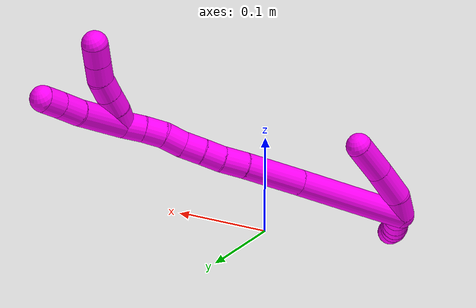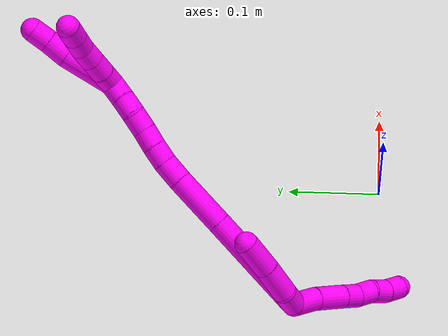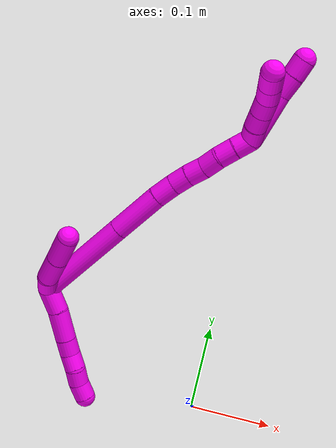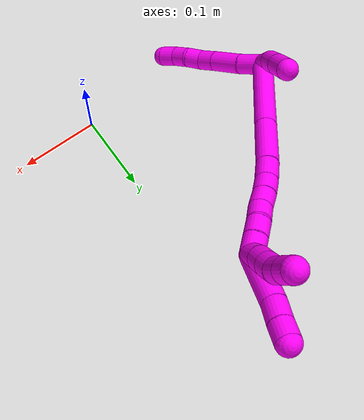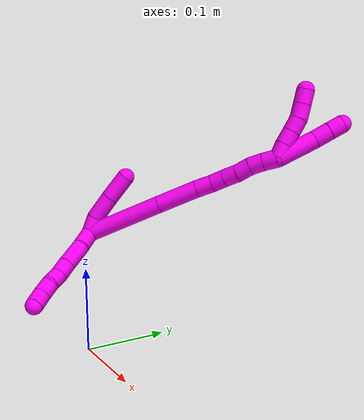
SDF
<sdf version="1.7">
 <world name="default">
  <model name="10">
   <static>0</static>
   <link name="10">
    <collision name="collision-cylinder-e_1_2_8">
     <pose>0.007211 -0.009165 -0.009652 2.38206 0.496488 1.13158</pose>
     <geometry><cylinder><radius>0.0125</radius><length>0.030275</length></cylinder></geometry>
     <surface>
      <friction><ode><mu>1.16</mu><mu2>1.16</mu2><slip1>0</slip1><slip2>0</slip2></ode></friction>
      <contact><ode><kp>1e+06</kp><kd>1</kd><max_vel>0</max_vel><min_depth>0.001</min_depth></ode></contact>
     </surface>
    </collision>
    <visual name="visual-cylinder-e_1_2_8">
     <pose>0.007211 -0.009165 -0.009652 2.38206 0.496488 1.13158</pose>
     <geometry><cylinder><radius>0.0125</radius><length>0.030275</length></cylinder></geometry>
     <material><ambient>1 0 0.964706 1</ambient></material>
    </visual>
    <collision name="collision-cylinder-e_2_8_9">
     <pose>0.021124 -0.029577 -0.032681 2.44247 0.36623 0.940083</pose>
     <geometry><cylinder><radius>0.0125</radius><length>0.037438</length></cylinder></geometry>
     <surface>
      <friction><ode><mu>1.16</mu><mu2>1.16</mu2><slip1>0</slip1><slip2>0</slip2></ode></friction>
      <contact><ode><kp>1e+06</kp><kd>1</kd><max_vel>0</max_vel><min_depth>0.001</min_depth></ode></contact>
     </surface>
    </collision>
    <visual name="visual-cylinder-e_2_8_9">
     <pose>0.021124 -0.029577 -0.032681 2.44247 0.36623 0.940083</pose>
     <geometry><cylinder><radius>0.0125</radius><length>0.037438</length></cylinder></geometry>
     <material><ambient>1 0 0.964706 1</ambient></material>
    </visual>
    <collision name="collision-cylinder-e_3_9_10">
     <pose>0.031671 -0.046843 -0.053797 2.48068 0.373628 1.00724</pose>
     <geometry><cylinder><radius>0.0125</radius><length>0.021059</length></cylinder></geometry>
     <surface>
      <friction><ode><mu>1.16</mu><mu2>1.16</mu2><slip1>0</slip1><slip2>0</slip2></ode></friction>
      <contact><ode><kp>1e+06</kp><kd>1</kd><max_vel>0</max_vel><min_depth>0.001</min_depth></ode></contact>
     </surface>
    </collision>
    <visual name="visual-cylinder-e_3_9_10">
     <pose>0.031671 -0.046843 -0.053797 2.48068 0.373628 1.00724</pose>
     <geometry><cylinder><radius>0.0125</radius><length>0.021059</length></cylinder></geometry>
     <material><ambient>1 0 0.964706 1</ambient></material>
    </visual>
    <collision name="collision-cylinder-e_4_10_11">
     <pose>0.03965 -0.060249 -0.067164 2.22166 0.418943 0.810715</pose>
     <geometry><cylinder><radius>0.0125</radius><length>0.020335</length></cylinder></geometry>
     <surface>
      <friction><ode><mu>1.16</mu><mu2>1.16</mu2><slip1>0</slip1><slip2>0</slip2></ode></friction>
      <contact><ode><kp>1e+06</kp><kd>1</kd><max_vel>0</max_vel><min_depth>0.001</min_depth></ode></contact>
     </surface>
    </collision>
    <visual name="visual-cylinder-e_4_10_11">
     <pose>0.03965 -0.060249 -0.067164 2.22166 0.418943 0.810715</pose>
     <geometry><cylinder><radius>0.0125</radius><length>0.020335</length></cylinder></geometry>
     <material><ambient>1 0 0.964706 1</ambient></material>
    </visual>
    <collision name="collision-cylinder-e_5_11_12">
     <pose>0.047103 -0.073258 -0.080502 2.5118 0.334541 0.95646</pose>
     <geometry><cylinder><radius>0.0125</radius><length>0.020203</length></cylinder></geometry>
     <surface>
      <friction><ode><mu>1.16</mu><mu2>1.16</mu2><slip1>0</slip1><slip2>0</slip2></ode></friction>
      <contact><ode><kp>1e+06</kp><kd>1</kd><max_vel>0</max_vel><min_depth>0.001</min_depth></ode></contact>
     </surface>
    </collision>
    <visual name="visual-cylinder-e_5_11_12">
     <pose>0.047103 -0.073258 -0.080502 2.5118 0.334541 0.95646</pose>
     <geometry><cylinder><radius>0.0125</radius><length>0.020203</length></cylinder></geometry>
     <material><ambient>1 0 0.964706 1</ambient></material>
    </visual>
    <collision name="collision-cylinder-e_6_12_6">
     <pose>0.055501 -0.085093 -0.094738 2.38051 0.513423 1.16143</pose>
     <geometry><cylinder><radius>0.0125</radius><length>0.020691</length></cylinder></geometry>
     <surface>
      <friction><ode><mu>1.16</mu><mu2>1.16</mu2><slip1>0</slip1><slip2>0</slip2></ode></friction>
      <contact><ode><kp>1e+06</kp><kd>1</kd><max_vel>0</max_vel><min_depth>0.001</min_depth></ode></contact>
     </surface>
    </collision>
    <visual name="visual-cylinder-e_6_12_6">
     <pose>0.055501 -0.085093 -0.094738 2.38051 0.513423 1.16143</pose>
     <geometry><cylinder><radius>0.0125</radius><length>0.020691</length></cylinder></geometry>
     <material><ambient>1 0 0.964706 1</ambient></material>
    </visual>
    <collision name="collision-cylinder-e_1_2_13">
     <pose>-0.001358 0.000225 0.012329 -0.018208 -0.109669 0.000999</pose>
     <geometry><cylinder><radius>0.0125</radius><length>0.024812</length></cylinder></geometry>
     <surface>
      <friction><ode><mu>1.16</mu><mu2>1.16</mu2><slip1>0</slip1><slip2>0</slip2></ode></friction>
      <contact><ode><kp>1e+06</kp><kd>1</kd><max_vel>0</max_vel><min_depth>0.001</min_depth></ode></contact>
     </surface>
    </collision>
    <visual name="visual-cylinder-e_1_2_13">
     <pose>-0.001358 0.000225 0.012329 -0.018208 -0.109669 0.000999</pose>
     <geometry><cylinder><radius>0.0125</radius><length>0.024812</length></cylinder></geometry>
     <material><ambient>1 0 0.964706 1</ambient></material>
    </visual>
    <collision name="collision-cylinder-e_2_13_14">
     <pose>0.000918 0.002431 0.042749 -0.109129 0.197059 -0.010798</pose>
     <geometry><cylinder><radius>0.0125</radius><length>0.037116</length></cylinder></geometry>
     <surface>
      <friction><ode><mu>1.16</mu><mu2>1.16</mu2><slip1>0</slip1><slip2>0</slip2></ode></friction>
      <contact><ode><kp>1e+06</kp><kd>1</kd><max_vel>0</max_vel><min_depth>0.001</min_depth></ode></contact>
     </surface>
    </collision>
    <visual name="visual-cylinder-e_2_13_14">
     <pose>0.000918 0.002431 0.042749 -0.109129 0.197059 -0.010798</pose>
     <geometry><cylinder><radius>0.0125</radius><length>0.037116</length></cylinder></geometry>
     <material><ambient>1 0 0.964706 1</ambient></material>
    </visual>
    <collision name="collision-cylinder-e_3_14_5">
     <pose>0.008327 0.007271 0.079278 -0.153754 0.199689 -0.015433</pose>
     <geometry><cylinder><radius>0.0125</radius><length>0.038072</length></cylinder></geometry>
     <surface>
      <friction><ode><mu>1.16</mu><mu2>1.16</mu2><slip1>0</slip1><slip2>0</slip2></ode></friction>
      <contact><ode><kp>1e+06</kp><kd>1</kd><max_vel>0</max_vel><min_depth>0.001</min_depth></ode></contact>
     </surface>
    </collision>
    <visual name="visual-cylinder-e_3_14_5">
     <pose>0.008327 0.007271 0.079278 -0.153754 0.199689 -0.015433</pose>
     <geometry><cylinder><radius>0.0125</radius><length>0.038072</length></cylinder></geometry>
     <material><ambient>1 0 0.964706 1</ambient></material>
    </visual>
    <collision name="collision-cylinder-e_1_2_15">
     <pose>0.035013 0.019371 0.041357 -0.438031 0.654082 -0.150726</pose>
     <geometry><cylinder><radius>0.0125</radius><length>0.115091</length></cylinder></geometry>
     <surface>
      <friction><ode><mu>1.16</mu><mu2>1.16</mu2><slip1>0</slip1><slip2>0</slip2></ode></friction>
      <contact><ode><kp>1e+06</kp><kd>1</kd><max_vel>0</max_vel><min_depth>0.001</min_depth></ode></contact>
     </surface>
    </collision>
    <visual name="visual-cylinder-e_1_2_15">
     <pose>0.035013 0.019371 0.041357 -0.438031 0.654082 -0.150726</pose>
     <geometry><cylinder><radius>0.0125</radius><length>0.115091</length></cylinder></geometry>
     <material><ambient>1 0 0.964706 1</ambient></material>
    </visual>
    <collision name="collision-cylinder-e_2_15_16">
     <pose>0.088328 0.049 0.104144 -0.446453 0.656395 -0.154292</pose>
     <geometry><cylinder><radius>0.0125</radius><length>0.059982</length></cylinder></geometry>
     <surface>
      <friction><ode><mu>1.16</mu><mu2>1.16</mu2><slip1>0</slip1><slip2>0</slip2></ode></friction>
      <contact><ode><kp>1e+06</kp><kd>1</kd><max_vel>0</max_vel><min_depth>0.001</min_depth></ode></contact>
     </surface>
    </collision>
    <visual name="visual-cylinder-e_2_15_16">
     <pose>0.088328 0.049 0.104144 -0.446453 0.656395 -0.154292</pose>
     <geometry><cylinder><radius>0.0125</radius><length>0.059982</length></cylinder></geometry>
     <material><ambient>1 0 0.964706 1</ambient></material>
    </visual>
    <collision name="collision-cylinder-e_3_16_17">
     <pose>0.114726 0.063055 0.13363 -0.440476 0.737784 -0.172661</pose>
     <geometry><cylinder><radius>0.0125</radius><length>0.024071</length></cylinder></geometry>
     <surface>
      <friction><ode><mu>1.16</mu><mu2>1.16</mu2><slip1>0</slip1><slip2>0</slip2></ode></friction>
      <contact><ode><kp>1e+06</kp><kd>1</kd><max_vel>0</max_vel><min_depth>0.001</min_depth></ode></contact>
     </surface>
    </collision>
    <visual name="visual-cylinder-e_3_16_17">
     <pose>0.114726 0.063055 0.13363 -0.440476 0.737784 -0.172661</pose>
     <geometry><cylinder><radius>0.0125</radius><length>0.024071</length></cylinder></geometry>
     <material><ambient>1 0 0.964706 1</ambient></material>
    </visual>
    <collision name="collision-cylinder-e_4_17_18">
     <pose>0.129671 0.068933 0.148759 -0.286089 0.748624 -0.113037</pose>
     <geometry><cylinder><radius>0.0125</radius><length>0.020127</length></cylinder></geometry>
     <surface>
      <friction><ode><mu>1.16</mu><mu2>1.16</mu2><slip1>0</slip1><slip2>0</slip2></ode></friction>
      <contact><ode><kp>1e+06</kp><kd>1</kd><max_vel>0</max_vel><min_depth>0.001</min_depth></ode></contact>
     </surface>
    </collision>
    <visual name="visual-cylinder-e_4_17_18">
     <pose>0.129671 0.068933 0.148759 -0.286089 0.748624 -0.113037</pose>
     <geometry><cylinder><radius>0.0125</radius><length>0.020127</length></cylinder></geometry>
     <material><ambient>1 0 0.964706 1</ambient></material>
    </visual>
    <collision name="collision-cylinder-e_5_18_19">
     <pose>0.143893 0.072673 0.162437 -0.246124 0.824964 -0.108142</pose>
     <geometry><cylinder><radius>0.0125</radius><length>0.020073</length></cylinder></geometry>
     <surface>
      <friction><ode><mu>1.16</mu><mu2>1.16</mu2><slip1>0</slip1><slip2>0</slip2></ode></friction>
      <contact><ode><kp>1e+06</kp><kd>1</kd><max_vel>0</max_vel><min_depth>0.001</min_depth></ode></contact>
     </surface>
    </collision>
    <visual name="visual-cylinder-e_5_18_19">
     <pose>0.143893 0.072673 0.162437 -0.246124 0.824964 -0.108142</pose>
     <geometry><cylinder><radius>0.0125</radius><length>0.020073</length></cylinder></geometry>
     <material><ambient>1 0 0.964706 1</ambient></material>
    </visual>
    <collision name="collision-cylinder-e_6_19_20">
     <pose>0.157561 0.076129 0.176997 -0.222145 0.657484 -0.076054</pose>
     <geometry><cylinder><radius>0.0125</radius><length>0.020604</length></cylinder></geometry>
     <surface>
      <friction><ode><mu>1.16</mu><mu2>1.16</mu2><slip1>0</slip1><slip2>0</slip2></ode></friction>
      <contact><ode><kp>1e+06</kp><kd>1</kd><max_vel>0</max_vel><min_depth>0.001</min_depth></ode></contact>
     </surface>
    </collision>
    <visual name="visual-cylinder-e_6_19_20">
     <pose>0.157561 0.076129 0.176997 -0.222145 0.657484 -0.076054</pose>
     <geometry><cylinder><radius>0.0125</radius><length>0.020604</length></cylinder></geometry>
     <material><ambient>1 0 0.964706 1</ambient></material>
    </visual>
    <collision name="collision-cylinder-e_7_20_21">
     <pose>0.171225 0.080282 0.191321 -0.35425 0.826025 -0.156562</pose>
     <geometry><cylinder><radius>0.0125</radius><length>0.020043</length></cylinder></geometry>
     <surface>
      <friction><ode><mu>1.16</mu><mu2>1.16</mu2><slip1>0</slip1><slip2>0</slip2></ode></friction>
      <contact><ode><kp>1e+06</kp><kd>1</kd><max_vel>0</max_vel><min_depth>0.001</min_depth></ode></contact>
     </surface>
    </collision>
    <visual name="visual-cylinder-e_7_20_21">
     <pose>0.171225 0.080282 0.191321 -0.35425 0.826025 -0.156562</pose>
     <geometry><cylinder><radius>0.0125</radius><length>0.020043</length></cylinder></geometry>
     <material><ambient>1 0 0.964706 1</ambient></material>
    </visual>
    <collision name="collision-cylinder-e_8_21_1">
     <pose>0.186241 0.085387 0.203526 -0.440354 0.870245 -0.20732</pose>
     <geometry><cylinder><radius>0.0125</radius><length>0.020009</length></cylinder></geometry>
     <surface>
      <friction><ode><mu>1.16</mu><mu2>1.16</mu2><slip1>0</slip1><slip2>0</slip2></ode></friction>
      <contact><ode><kp>1e+06</kp><kd>1</kd><max_vel>0</max_vel><min_depth>0.001</min_depth></ode></contact>
     </surface>
    </collision>
    <visual name="visual-cylinder-e_8_21_1">
     <pose>0.186241 0.085387 0.203526 -0.440354 0.870245 -0.20732</pose>
     <geometry><cylinder><radius>0.0125</radius><length>0.020009</length></cylinder></geometry>
     <material><ambient>1 0 0.964706 1</ambient></material>
    </visual>
    <collision name="collision-cylinder-e_1_1_22">
     <pose>0.20391 0.103436 0.230872 -0.618219 0.362796 -0.117011</pose>
     <geometry><cylinder><radius>0.0125</radius><length>0.056471</length></cylinder></geometry>
     <surface>
      <friction><ode><mu>1.16</mu><mu2>1.16</mu2><slip1>0</slip1><slip2>0</slip2></ode></friction>
      <contact><ode><kp>1e+06</kp><kd>1</kd><max_vel>0</max_vel><min_depth>0.001</min_depth></ode></contact>
     </surface>
    </collision>
    <visual name="visual-cylinder-e_1_1_22">
     <pose>0.20391 0.103436 0.230872 -0.618219 0.362796 -0.117011</pose>
     <geometry><cylinder><radius>0.0125</radius><length>0.056471</length></cylinder></geometry>
     <material><ambient>1 0 0.964706 1</ambient></material>
    </visual>
    <collision name="collision-cylinder-e_2_22_23">
     <pose>0.218864 0.123697 0.26181 -0.4845 0.433761 -0.108789</pose>
     <geometry><cylinder><radius>0.0125</radius><length>0.02348</length></cylinder></geometry>
     <surface>
      <friction><ode><mu>1.16</mu><mu2>1.16</mu2><slip1>0</slip1><slip2>0</slip2></ode></friction>
      <contact><ode><kp>1e+06</kp><kd>1</kd><max_vel>0</max_vel><min_depth>0.001</min_depth></ode></contact>
     </surface>
    </collision>
    <visual name="visual-cylinder-e_2_22_23">
     <pose>0.218864 0.123697 0.26181 -0.4845 0.433761 -0.108789</pose>
     <geometry><cylinder><radius>0.0125</radius><length>0.02348</length></cylinder></geometry>
     <material><ambient>1 0 0.964706 1</ambient></material>
    </visual>
    <collision name="collision-cylinder-e_3_23_4">
     <pose>0.227612 0.133396 0.279206 -0.536293 0.390302 -0.108517</pose>
     <geometry><cylinder><radius>0.0125</radius><length>0.020049</length></cylinder></geometry>
     <surface>
      <friction><ode><mu>1.16</mu><mu2>1.16</mu2><slip1>0</slip1><slip2>0</slip2></ode></friction>
      <contact><ode><kp>1e+06</kp><kd>1</kd><max_vel>0</max_vel><min_depth>0.001</min_depth></ode></contact>
     </surface>
    </collision>
    <visual name="visual-cylinder-e_3_23_4">
     <pose>0.227612 0.133396 0.279206 -0.536293 0.390302 -0.108517</pose>
     <geometry><cylinder><radius>0.0125</radius><length>0.020049</length></cylinder></geometry>
     <material><ambient>1 0 0.964706 1</ambient></material>
    </visual>
    <collision name="collision-cylinder-e_1_1_24">
     <pose>0.193214 0.088825 0.219313 -0.069086 -0.067593 0.002337</pose>
     <geometry><cylinder><radius>0.0125</radius><length>0.02</length></cylinder></geometry>
     <surface>
      <friction><ode><mu>1.16</mu><mu2>1.16</mu2><slip1>0</slip1><slip2>0</slip2></ode></friction>
      <contact><ode><kp>1e+06</kp><kd>1</kd><max_vel>0</max_vel><min_depth>0.001</min_depth></ode></contact>
     </surface>
    </collision>
    <visual name="visual-cylinder-e_1_1_24">
     <pose>0.193214 0.088825 0.219313 -0.069086 -0.067593 0.002337</pose>
     <geometry><cylinder><radius>0.0125</radius><length>0.02</length></cylinder></geometry>
     <material><ambient>1 0 0.964706 1</ambient></material>
    </visual>
    <collision name="collision-cylinder-e_2_24_25">
     <pose>0.192951 0.090653 0.239193 -0.114264 0.041242 -0.002359</pose>
     <geometry><cylinder><radius>0.0125</radius><length>0.02</length></cylinder></geometry>
     <surface>
      <friction><ode><mu>1.16</mu><mu2>1.16</mu2><slip1>0</slip1><slip2>0</slip2></ode></friction>
      <contact><ode><kp>1e+06</kp><kd>1</kd><max_vel>0</max_vel><min_depth>0.001</min_depth></ode></contact>
     </surface>
    </collision>
    <visual name="visual-cylinder-e_2_24_25">
     <pose>0.192951 0.090653 0.239193 -0.114264 0.041242 -0.002359</pose>
     <geometry><cylinder><radius>0.0125</radius><length>0.02</length></cylinder></geometry>
     <material><ambient>1 0 0.964706 1</ambient></material>
    </visual>
    <collision name="collision-cylinder-e_3_25_26">
     <pose>0.193581 0.092825 0.259064 -0.10347 0.021769 -0.001127</pose>
     <geometry><cylinder><radius>0.0125</radius><length>0.02</length></cylinder></geometry>
     <surface>
      <friction><ode><mu>1.16</mu><mu2>1.16</mu2><slip1>0</slip1><slip2>0</slip2></ode></friction>
      <contact><ode><kp>1e+06</kp><kd>1</kd><max_vel>0</max_vel><min_depth>0.001</min_depth></ode></contact>
     </surface>
    </collision>
    <visual name="visual-cylinder-e_3_25_26">
     <pose>0.193581 0.092825 0.259064 -0.10347 0.021769 -0.001127</pose>
     <geometry><cylinder><radius>0.0125</radius><length>0.02</length></cylinder></geometry>
     <material><ambient>1 0 0.964706 1</ambient></material>
    </visual>
    <collision name="collision-cylinder-e_4_26_27">
     <pose>0.192005 0.093217 0.278825 0.065126 -0.180249 -0.005887</pose>
     <geometry><cylinder><radius>0.0125</radius><length>0.02</length></cylinder></geometry>
     <surface>
      <friction><ode><mu>1.16</mu><mu2>1.16</mu2><slip1>0</slip1><slip2>0</slip2></ode></friction>
      <contact><ode><kp>1e+06</kp><kd>1</kd><max_vel>0</max_vel><min_depth>0.001</min_depth></ode></contact>
     </surface>
    </collision>
    <visual name="visual-cylinder-e_4_26_27">
     <pose>0.192005 0.093217 0.278825 0.065126 -0.180249 -0.005887</pose>
     <geometry><cylinder><radius>0.0125</radius><length>0.02</length></cylinder></geometry>
     <material><ambient>1 0 0.964706 1</ambient></material>
    </visual>
    <collision name="collision-cylinder-e_5_27_3">
     <pose>0.188359 0.091952 0.298449 0.063657 -0.186485 -0.005955</pose>
     <geometry><cylinder><radius>0.0125</radius><length>0.02</length></cylinder></geometry>
     <surface>
      <friction><ode><mu>1.16</mu><mu2>1.16</mu2><slip1>0</slip1><slip2>0</slip2></ode></friction>
      <contact><ode><kp>1e+06</kp><kd>1</kd><max_vel>0</max_vel><min_depth>0.001</min_depth></ode></contact>
     </surface>
    </collision>
    <visual name="visual-cylinder-e_5_27_3">
     <pose>0.188359 0.091952 0.298449 0.063657 -0.186485 -0.005955</pose>
     <geometry><cylinder><radius>0.0125</radius><length>0.02</length></cylinder></geometry>
     <material><ambient>1 0 0.964706 1</ambient></material>
    </visual>
    <collision name="collision-sphere-3">
     <pose>0.186505 0.091326 0.308255 0 -0 0</pose>
     <geometry><sphere><radius>0.0125</radius></sphere></geometry>
     <surface>
      <friction><ode><mu>1.16</mu><mu2>1.16</mu2><slip1>0</slip1><slip2>0</slip2></ode></friction>
      <contact><ode><kp>1e+06</kp><kd>1</kd><max_vel>0</max_vel><min_depth>0.001</min_depth></ode></contact>
     </surface>
    </collision>
    <visual name="visual-sphere-3">
     <pose>0.186505 0.091326 0.308255 0 -0 0</pose>
     <geometry><sphere><radius>0.0125</radius></sphere></geometry>
     <material><ambient>1 0 0.964706 1</ambient></material>
    </visual>
    <collision name="collision-sphere-27">
     <pose>0.190213 0.092577 0.288642 0 -0 0</pose>
     <geometry><sphere><radius>0.0125</radius></sphere></geometry>
     <surface>
      <friction><ode><mu>1.16</mu><mu2>1.16</mu2><slip1>0</slip1><slip2>0</slip2></ode></friction>
      <contact><ode><kp>1e+06</kp><kd>1</kd><max_vel>0</max_vel><min_depth>0.001</min_depth></ode></contact>
     </surface>
    </collision>
    <visual name="visual-sphere-27">
     <pose>0.190213 0.092577 0.288642 0 -0 0</pose>
     <geometry><sphere><radius>0.0125</radius></sphere></geometry>
     <material><ambient>1 0 0.964706 1</ambient></material>
    </visual>
    <collision name="collision-sphere-26">
     <pose>0.193798 0.093857 0.269008 0 -0 0</pose>
     <geometry><sphere><radius>0.0125</radius></sphere></geometry>
     <surface>
      <friction><ode><mu>1.16</mu><mu2>1.16</mu2><slip1>0</slip1><slip2>0</slip2></ode></friction>
      <contact><ode><kp>1e+06</kp><kd>1</kd><max_vel>0</max_vel><min_depth>0.001</min_depth></ode></contact>
     </surface>
    </collision>
    <visual name="visual-sphere-26">
     <pose>0.193798 0.093857 0.269008 0 -0 0</pose>
     <geometry><sphere><radius>0.0125</radius></sphere></geometry>
     <material><ambient>1 0 0.964706 1</ambient></material>
    </visual>
    <collision name="collision-sphere-25">
     <pose>0.193363 0.091792 0.249119 0 -0 0</pose>
     <geometry><sphere><radius>0.0125</radius></sphere></geometry>
     <surface>
      <friction><ode><mu>1.16</mu><mu2>1.16</mu2><slip1>0</slip1><slip2>0</slip2></ode></friction>
      <contact><ode><kp>1e+06</kp><kd>1</kd><max_vel>0</max_vel><min_depth>0.001</min_depth></ode></contact>
     </surface>
    </collision>
    <visual name="visual-sphere-25">
     <pose>0.193363 0.091792 0.249119 0 -0 0</pose>
     <geometry><sphere><radius>0.0125</radius></sphere></geometry>
     <material><ambient>1 0 0.964706 1</ambient></material>
    </visual>
    <collision name="collision-sphere-24">
     <pose>0.192538 0.089514 0.229267 0 -0 0</pose>
     <geometry><sphere><radius>0.0125</radius></sphere></geometry>
     <surface>
      <friction><ode><mu>1.16</mu><mu2>1.16</mu2><slip1>0</slip1><slip2>0</slip2></ode></friction>
      <contact><ode><kp>1e+06</kp><kd>1</kd><max_vel>0</max_vel><min_depth>0.001</min_depth></ode></contact>
     </surface>
    </collision>
    <visual name="visual-sphere-24">
     <pose>0.192538 0.089514 0.229267 0 -0 0</pose>
     <geometry><sphere><radius>0.0125</radius></sphere></geometry>
     <material><ambient>1 0 0.964706 1</ambient></material>
    </visual>
    <collision name="collision-sphere-4">
     <pose>0.231426 0.138132 0.287175 0 -0 0</pose>
     <geometry><sphere><radius>0.0125</radius></sphere></geometry>
     <surface>
      <friction><ode><mu>1.16</mu><mu2>1.16</mu2><slip1>0</slip1><slip2>0</slip2></ode></friction>
      <contact><ode><kp>1e+06</kp><kd>1</kd><max_vel>0</max_vel><min_depth>0.001</min_depth></ode></contact>
     </surface>
    </collision>
    <visual name="visual-sphere-4">
     <pose>0.231426 0.138132 0.287175 0 -0 0</pose>
     <geometry><sphere><radius>0.0125</radius></sphere></geometry>
     <material><ambient>1 0 0.964706 1</ambient></material>
    </visual>
    <collision name="collision-sphere-23">
     <pose>0.223798 0.128659 0.271237 0 -0 0</pose>
     <geometry><sphere><radius>0.0125</radius></sphere></geometry>
     <surface>
      <friction><ode><mu>1.16</mu><mu2>1.16</mu2><slip1>0</slip1><slip2>0</slip2></ode></friction>
      <contact><ode><kp>1e+06</kp><kd>1</kd><max_vel>0</max_vel><min_depth>0.001</min_depth></ode></contact>
     </surface>
    </collision>
    <visual name="visual-sphere-23">
     <pose>0.223798 0.128659 0.271237 0 -0 0</pose>
     <geometry><sphere><radius>0.0125</radius></sphere></geometry>
     <material><ambient>1 0 0.964706 1</ambient></material>
    </visual>
    <collision name="collision-sphere-22">
     <pose>0.21393 0.118735 0.252384 0 -0 0</pose>
     <geometry><sphere><radius>0.0125</radius></sphere></geometry>
     <surface>
      <friction><ode><mu>1.16</mu><mu2>1.16</mu2><slip1>0</slip1><slip2>0</slip2></ode></friction>
      <contact><ode><kp>1e+06</kp><kd>1</kd><max_vel>0</max_vel><min_depth>0.001</min_depth></ode></contact>
     </surface>
    </collision>
    <visual name="visual-sphere-22">
     <pose>0.21393 0.118735 0.252384 0 -0 0</pose>
     <geometry><sphere><radius>0.0125</radius></sphere></geometry>
     <material><ambient>1 0 0.964706 1</ambient></material>
    </visual>
    <collision name="collision-sphere-1">
     <pose>0.193889 0.088136 0.20936 0 -0 0</pose>
     <geometry><sphere><radius>0.0125</radius></sphere></geometry>
     <surface>
      <friction><ode><mu>1.16</mu><mu2>1.16</mu2><slip1>0</slip1><slip2>0</slip2></ode></friction>
      <contact><ode><kp>1e+06</kp><kd>1</kd><max_vel>0</max_vel><min_depth>0.001</min_depth></ode></contact>
     </surface>
    </collision>
    <visual name="visual-sphere-1">
     <pose>0.193889 0.088136 0.20936 0 -0 0</pose>
     <geometry><sphere><radius>0.0125</radius></sphere></geometry>
     <material><ambient>1 0 0.964706 1</ambient></material>
    </visual>
    <collision name="collision-sphere-21">
     <pose>0.178593 0.082638 0.197692 0 -0 0</pose>
     <geometry><sphere><radius>0.0125</radius></sphere></geometry>
     <surface>
      <friction><ode><mu>1.16</mu><mu2>1.16</mu2><slip1>0</slip1><slip2>0</slip2></ode></friction>
      <contact><ode><kp>1e+06</kp><kd>1</kd><max_vel>0</max_vel><min_depth>0.001</min_depth></ode></contact>
     </surface>
    </collision>
    <visual name="visual-sphere-21">
     <pose>0.178593 0.082638 0.197692 0 -0 0</pose>
     <geometry><sphere><radius>0.0125</radius></sphere></geometry>
     <material><ambient>1 0 0.964706 1</ambient></material>
    </visual>
    <collision name="collision-sphere-12">
     <pose>0.050419 -0.078878 -0.088212 0 -0 0</pose>
     <geometry><sphere><radius>0.0125</radius></sphere></geometry>
     <surface>
      <friction><ode><mu>1.16</mu><mu2>1.16</mu2><slip1>0</slip1><slip2>0</slip2></ode></friction>
      <contact><ode><kp>1e+06</kp><kd>1</kd><max_vel>0</max_vel><min_depth>0.001</min_depth></ode></contact>
     </surface>
    </collision>
    <visual name="visual-sphere-12">
     <pose>0.050419 -0.078878 -0.088212 0 -0 0</pose>
     <geometry><sphere><radius>0.0125</radius></sphere></geometry>
     <material><ambient>1 0 0.964706 1</ambient></material>
    </visual>
    <collision name="collision-sphere-11">
     <pose>0.043786 -0.067639 -0.072791 0 -0 0</pose>
     <geometry><sphere><radius>0.0125</radius></sphere></geometry>
     <surface>
      <friction><ode><mu>1.16</mu><mu2>1.16</mu2><slip1>0</slip1><slip2>0</slip2></ode></friction>
      <contact><ode><kp>1e+06</kp><kd>1</kd><max_vel>0</max_vel><min_depth>0.001</min_depth></ode></contact>
     </surface>
    </collision>
    <visual name="visual-sphere-11">
     <pose>0.043786 -0.067639 -0.072791 0 -0 0</pose>
     <geometry><sphere><radius>0.0125</radius></sphere></geometry>
     <material><ambient>1 0 0.964706 1</ambient></material>
    </visual>
    <collision name="collision-sphere-10">
     <pose>0.035514 -0.05286 -0.061536 0 -0 0</pose>
     <geometry><sphere><radius>0.0125</radius></sphere></geometry>
     <surface>
      <friction><ode><mu>1.16</mu><mu2>1.16</mu2><slip1>0</slip1><slip2>0</slip2></ode></friction>
      <contact><ode><kp>1e+06</kp><kd>1</kd><max_vel>0</max_vel><min_depth>0.001</min_depth></ode></contact>
     </surface>
    </collision>
    <visual name="visual-sphere-10">
     <pose>0.035514 -0.05286 -0.061536 0 -0 0</pose>
     <geometry><sphere><radius>0.0125</radius></sphere></geometry>
     <material><ambient>1 0 0.964706 1</ambient></material>
    </visual>
    <collision name="collision-sphere-9">
     <pose>0.027828 -0.040825 -0.046058 0 -0 0</pose>
     <geometry><sphere><radius>0.0125</radius></sphere></geometry>
     <surface>
      <friction><ode><mu>1.16</mu><mu2>1.16</mu2><slip1>0</slip1><slip2>0</slip2></ode></friction>
      <contact><ode><kp>1e+06</kp><kd>1</kd><max_vel>0</max_vel><min_depth>0.001</min_depth></ode></contact>
     </surface>
    </collision>
    <visual name="visual-sphere-9">
     <pose>0.027828 -0.040825 -0.046058 0 -0 0</pose>
     <geometry><sphere><radius>0.0125</radius></sphere></geometry>
     <material><ambient>1 0 0.964706 1</ambient></material>
    </visual>
    <collision name="collision-sphere-2">
     <geometry><sphere><radius>0.0125</radius></sphere></geometry>
     <surface>
      <friction><ode><mu>1.16</mu><mu2>1.16</mu2><slip1>0</slip1><slip2>0</slip2></ode></friction>
      <contact><ode><kp>1e+06</kp><kd>1</kd><max_vel>0</max_vel><min_depth>0.001</min_depth></ode></contact>
     </surface>
    </collision>
    <visual name="visual-sphere-2">
     <geometry><sphere><radius>0.0125</radius></sphere></geometry>
     <material><ambient>1 0 0.964706 1</ambient></material>
    </visual>
    <collision name="collision-sphere-19">
     <pose>0.151265 0.074332 0.169043 0 -0 0</pose>
     <geometry><sphere><radius>0.0125</radius></sphere></geometry>
     <surface>
      <friction><ode><mu>1.16</mu><mu2>1.16</mu2><slip1>0</slip1><slip2>0</slip2></ode></friction>
      <contact><ode><kp>1e+06</kp><kd>1</kd><max_vel>0</max_vel><min_depth>0.001</min_depth></ode></contact>
     </surface>
    </collision>
    <visual name="visual-sphere-19">
     <pose>0.151265 0.074332 0.169043 0 -0 0</pose>
     <geometry><sphere><radius>0.0125</radius></sphere></geometry>
     <material><ambient>1 0 0.964706 1</ambient></material>
    </visual>
    <collision name="collision-sphere-8">
     <pose>0.014421 -0.01833 -0.019303 0 -0 0</pose>
     <geometry><sphere><radius>0.0125</radius></sphere></geometry>
     <surface>
      <friction><ode><mu>1.16</mu><mu2>1.16</mu2><slip1>0</slip1><slip2>0</slip2></ode></friction>
      <contact><ode><kp>1e+06</kp><kd>1</kd><max_vel>0</max_vel><min_depth>0.001</min_depth></ode></contact>
     </surface>
    </collision>
    <visual name="visual-sphere-8">
     <pose>0.014421 -0.01833 -0.019303 0 -0 0</pose>
     <geometry><sphere><radius>0.0125</radius></sphere></geometry>
     <material><ambient>1 0 0.964706 1</ambient></material>
    </visual>
    <collision name="collision-sphere-6">
     <pose>0.060582 -0.091308 -0.101263 0 -0 0</pose>
     <geometry><sphere><radius>0.0125</radius></sphere></geometry>
     <surface>
      <friction><ode><mu>1.16</mu><mu2>1.16</mu2><slip1>0</slip1><slip2>0</slip2></ode></friction>
      <contact><ode><kp>1e+06</kp><kd>1</kd><max_vel>0</max_vel><min_depth>0.001</min_depth></ode></contact>
     </surface>
    </collision>
    <visual name="visual-sphere-6">
     <pose>0.060582 -0.091308 -0.101263 0 -0 0</pose>
     <geometry><sphere><radius>0.0125</radius></sphere></geometry>
     <material><ambient>1 0 0.964706 1</ambient></material>
    </visual>
    <collision name="collision-sphere-13">
     <pose>-0.002716 0.000449 0.024659 0 -0 0</pose>
     <geometry><sphere><radius>0.0125</radius></sphere></geometry>
     <surface>
      <friction><ode><mu>1.16</mu><mu2>1.16</mu2><slip1>0</slip1><slip2>0</slip2></ode></friction>
      <contact><ode><kp>1e+06</kp><kd>1</kd><max_vel>0</max_vel><min_depth>0.001</min_depth></ode></contact>
     </surface>
    </collision>
    <visual name="visual-sphere-13">
     <pose>-0.002716 0.000449 0.024659 0 -0 0</pose>
     <geometry><sphere><radius>0.0125</radius></sphere></geometry>
     <material><ambient>1 0 0.964706 1</ambient></material>
    </visual>
    <collision name="collision-sphere-14">
     <pose>0.004551 0.004413 0.06084 0 -0 0</pose>
     <geometry><sphere><radius>0.0125</radius></sphere></geometry>
     <surface>
      <friction><ode><mu>1.16</mu><mu2>1.16</mu2><slip1>0</slip1><slip2>0</slip2></ode></friction>
      <contact><ode><kp>1e+06</kp><kd>1</kd><max_vel>0</max_vel><min_depth>0.001</min_depth></ode></contact>
     </surface>
    </collision>
    <visual name="visual-sphere-14">
     <pose>0.004551 0.004413 0.06084 0 -0 0</pose>
     <geometry><sphere><radius>0.0125</radius></sphere></geometry>
     <material><ambient>1 0 0.964706 1</ambient></material>
    </visual>
    <collision name="collision-sphere-5">
     <pose>0.012103 0.010128 0.097715 0 -0 0</pose>
     <geometry><sphere><radius>0.0125</radius></sphere></geometry>
     <surface>
      <friction><ode><mu>1.16</mu><mu2>1.16</mu2><slip1>0</slip1><slip2>0</slip2></ode></friction>
      <contact><ode><kp>1e+06</kp><kd>1</kd><max_vel>0</max_vel><min_depth>0.001</min_depth></ode></contact>
     </surface>
    </collision>
    <visual name="visual-sphere-5">
     <pose>0.012103 0.010128 0.097715 0 -0 0</pose>
     <geometry><sphere><radius>0.0125</radius></sphere></geometry>
     <material><ambient>1 0 0.964706 1</ambient></material>
    </visual>
    <collision name="collision-sphere-15">
     <pose>0.070025 0.038741 0.082714 0 -0 0</pose>
     <geometry><sphere><radius>0.0125</radius></sphere></geometry>
     <surface>
      <friction><ode><mu>1.16</mu><mu2>1.16</mu2><slip1>0</slip1><slip2>0</slip2></ode></friction>
      <contact><ode><kp>1e+06</kp><kd>1</kd><max_vel>0</max_vel><min_depth>0.001</min_depth></ode></contact>
     </surface>
    </collision>
    <visual name="visual-sphere-15">
     <pose>0.070025 0.038741 0.082714 0 -0 0</pose>
     <geometry><sphere><radius>0.0125</radius></sphere></geometry>
     <material><ambient>1 0 0.964706 1</ambient></material>
    </visual>
    <collision name="collision-sphere-16">
     <pose>0.10663 0.059258 0.125574 0 -0 0</pose>
     <geometry><sphere><radius>0.0125</radius></sphere></geometry>
     <surface>
      <friction><ode><mu>1.16</mu><mu2>1.16</mu2><slip1>0</slip1><slip2>0</slip2></ode></friction>
      <contact><ode><kp>1e+06</kp><kd>1</kd><max_vel>0</max_vel><min_depth>0.001</min_depth></ode></contact>
     </surface>
    </collision>
    <visual name="visual-sphere-16">
     <pose>0.10663 0.059258 0.125574 0 -0 0</pose>
     <geometry><sphere><radius>0.0125</radius></sphere></geometry>
     <material><ambient>1 0 0.964706 1</ambient></material>
    </visual>
    <collision name="collision-sphere-17">
     <pose>0.122822 0.066852 0.141686 0 -0 0</pose>
     <geometry><sphere><radius>0.0125</radius></sphere></geometry>
     <surface>
      <friction><ode><mu>1.16</mu><mu2>1.16</mu2><slip1>0</slip1><slip2>0</slip2></ode></friction>
      <contact><ode><kp>1e+06</kp><kd>1</kd><max_vel>0</max_vel><min_depth>0.001</min_depth></ode></contact>
     </surface>
    </collision>
    <visual name="visual-sphere-17">
     <pose>0.122822 0.066852 0.141686 0 -0 0</pose>
     <geometry><sphere><radius>0.0125</radius></sphere></geometry>
     <material><ambient>1 0 0.964706 1</ambient></material>
    </visual>
    <collision name="collision-sphere-18">
     <pose>0.136521 0.071014 0.155832 0 -0 0</pose>
     <geometry><sphere><radius>0.0125</radius></sphere></geometry>
     <surface>
      <friction><ode><mu>1.16</mu><mu2>1.16</mu2><slip1>0</slip1><slip2>0</slip2></ode></friction>
      <contact><ode><kp>1e+06</kp><kd>1</kd><max_vel>0</max_vel><min_depth>0.001</min_depth></ode></contact>
     </surface>
    </collision>
    <visual name="visual-sphere-18">
     <pose>0.136521 0.071014 0.155832 0 -0 0</pose>
     <geometry><sphere><radius>0.0125</radius></sphere></geometry>
     <material><ambient>1 0 0.964706 1</ambient></material>
    </visual>
    <collision name="collision-sphere-20">
     <pose>0.163856 0.077926 0.184951 0 -0 0</pose>
     <geometry><sphere><radius>0.0125</radius></sphere></geometry>
     <surface>
      <friction><ode><mu>1.16</mu><mu2>1.16</mu2><slip1>0</slip1><slip2>0</slip2></ode></friction>
      <contact><ode><kp>1e+06</kp><kd>1</kd><max_vel>0</max_vel><min_depth>0.001</min_depth></ode></contact>
     </surface>
    </collision>
    <visual name="visual-sphere-20">
     <pose>0.163856 0.077926 0.184951 0 -0 0</pose>
     <geometry><sphere><radius>0.0125</radius></sphere></geometry>
     <material><ambient>1 0 0.964706 1</ambient></material>
    </visual>
    <inertial>
     <pose>0.097749 0.038031 0.106695 0 -0 0</pose>
     <mass>0.75</mass>
     <inertia>
      <ixx>0.000187</ixx>
      <ixy>0</ixy>
      <ixz>0</ixz>
      <iyy>0.000182</iyy>
      <iyz>0</iyz>
      <izz>-0.000141</izz>
     </inertia>
    </inertial>
   </link>
   <pose>-0.200311 0.09154 0.087652 -0.389504 0.194054 0.177825</pose>
  </model>
 </world>
</sdf>
